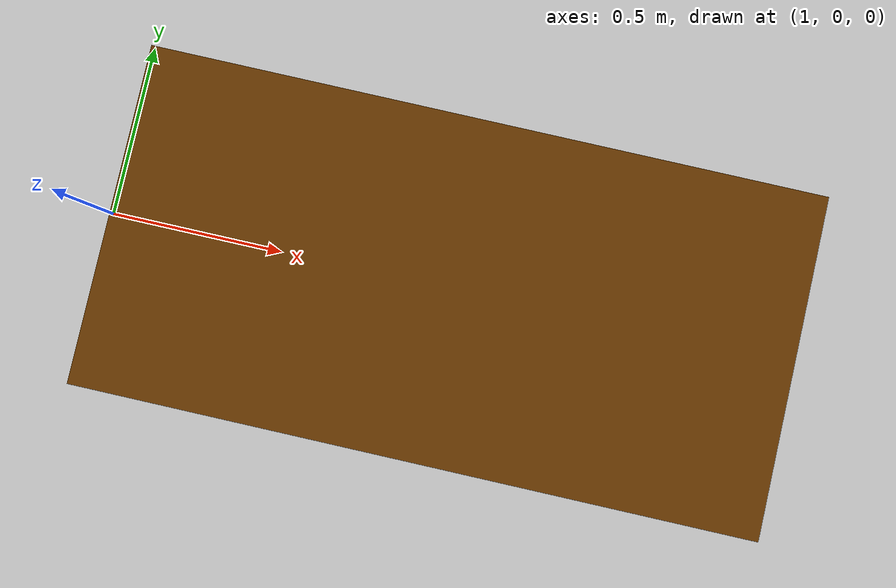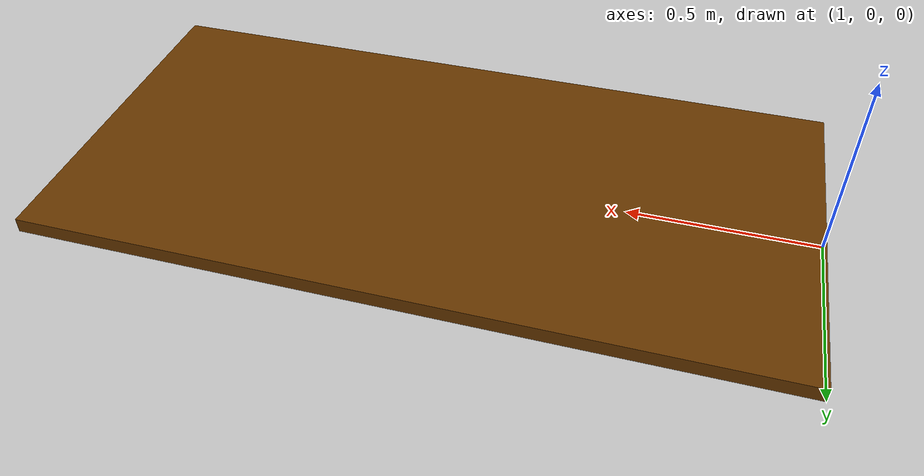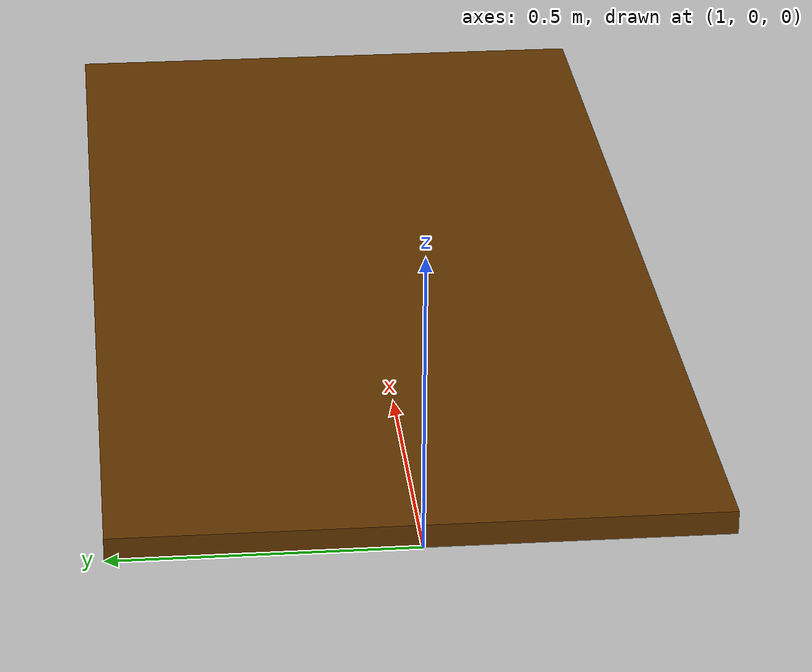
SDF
<?xml version="1.0" ?>
<sdf version="1.5">
    <world name="default">

        <physics type="ode">
        <max_step_size>0.001</max_step_size>
        <real_time_factor>1</real_time_factor>
        <real_time_update_rate>1000</real_time_update_rate>
        <gravity>0 0 -9.81</gravity>
            <ode>
                <solver>
                <type>quick</type>
                <iters>50</iters>
                <sor>1.3</sor>
                </solver>
                <constraints>
                <cfm>0.0</cfm>
                <erp>0.2</erp>
                <contact_max_correcting_vel>10.0</contact_max_correcting_vel>
                <contact_surface_layer>0.001</contact_surface_layer>
                </constraints>
            </ode>
        </physics>

        <scene>
        <shadows>false</shadows>
        </scene>
        <!-- A global light source -->
        <include>
            <uri>model://sun</uri>
        </include>
        <!-- A ground plane -->
        <include>
            <uri>model://ground_plane</uri>
        </include>
        <!-- environment blocks, obstacles or stairs -->
        <model name="static_environment">
            <static>true</static>

            <link name="box1">
                <pose>2 0 0.02 0 0 0</pose>
                <collision name="box1_collision">
                    <geometry>
                        <box>
                            <size>2.0 1 0.04</size>
                        </box>
                    </geometry>
                </collision>
                <visual name="box1_visual">
                    <geometry>
                        <box>
                            <size>2.0 1 0.04</size>
                        </box>
                    </geometry>
                    <material>
                        <ambient>0.2 0.2 0.2 1.0</ambient>
                        <diffuse>.421 0.225 0.0 1.0</diffuse>
                    </material>
                </visual>
            </link>

        </model>

    </world>
</sdf>
